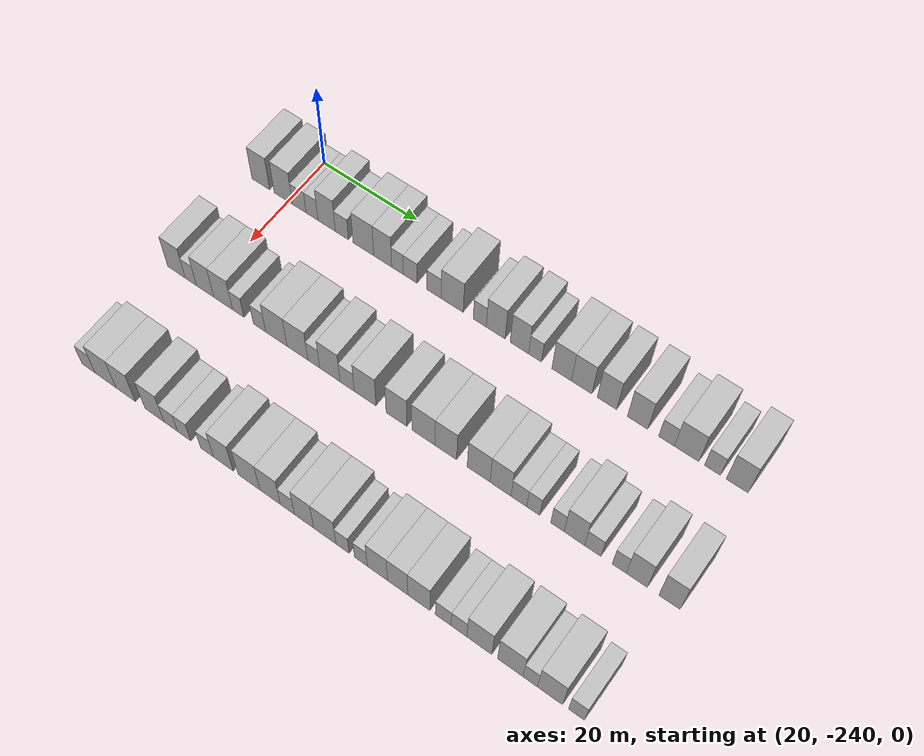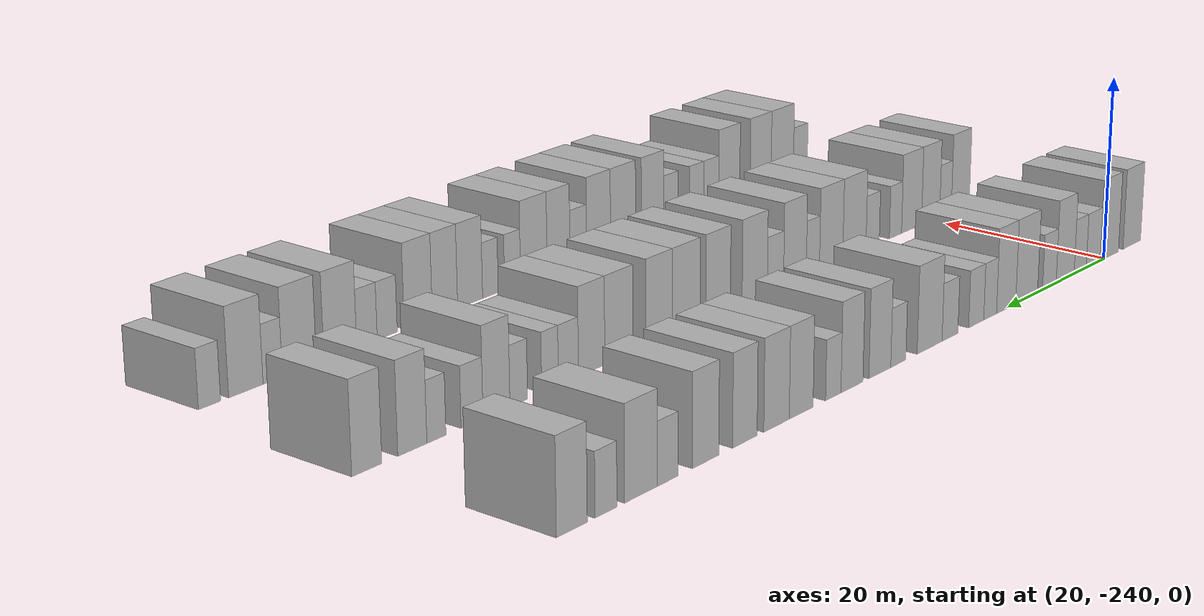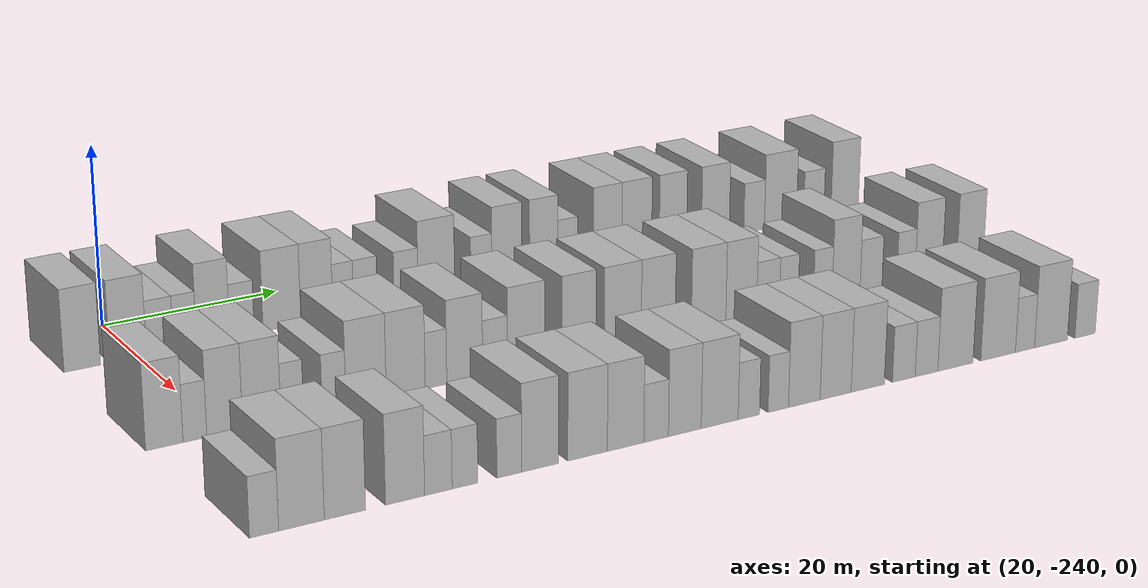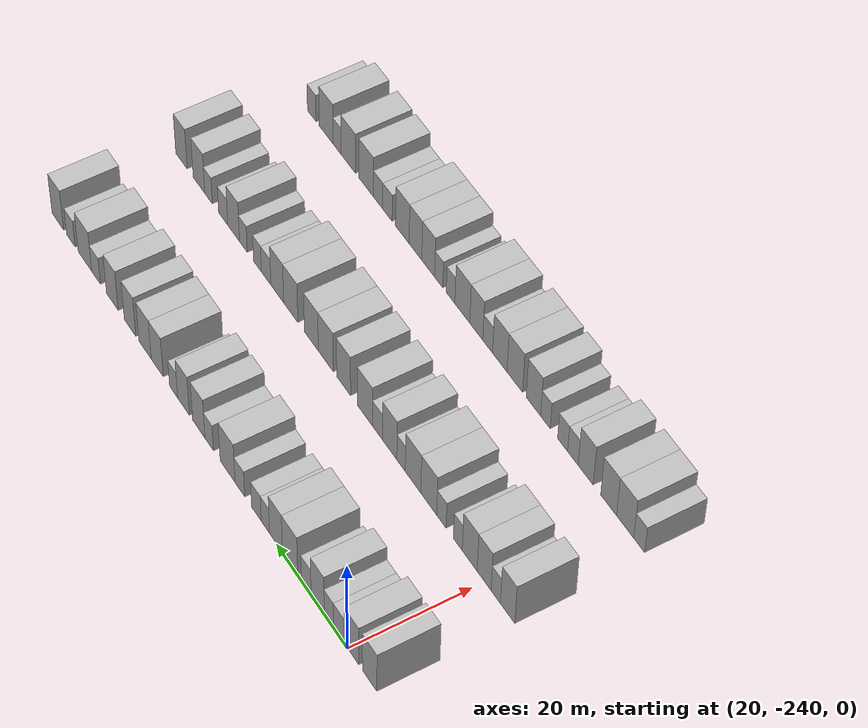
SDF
<sdf version="1.6">
 <world name="default">
  <model name="building_1">
   <static>1</static>
   <pose>25.0000 -246.0321 0 0.000000 0.000000 0.000000</pose>
   <link name="link">
    <pose>0 0 4.50 0 0 0</pose>
    <collision name="collision"><geometry><box><size>10.0000 3.9358 9.0000</size></box></geometry></collision>
    <visual name="visual">
     <cast_shadows>0</cast_shadows>
     <geometry><box><size>10.0000 3.9358 9.0000</size></box></geometry>
     <material>
      <script>
       <uri>model://HANNAS_wall/materials/scripts</uri>
       <uri>model://HANNAS_wall/materials/textures</uri>
       <name>vrc/HANNAS_wall</name>
      </script>
     </material>
    </visual>
   </link>
  </model>
  <model name="building_2">
   <static>1</static>
   <pose>25.0000 -241.0633 0 0.000000 0.000000 0.000000</pose>
   <link name="link">
    <pose>0 0 4.50 0 0 0</pose>
    <collision name="collision"><geometry><box><size>10.0000 4.0018 9.0000</size></box></geometry></collision>
    <visual name="visual">
     <cast_shadows>0</cast_shadows>
     <geometry><box><size>10.0000 4.0018 9.0000</size></box></geometry>
     <material>
      <script>
       <uri>model://HANNAS_wall/materials/scripts</uri>
       <uri>model://HANNAS_wall/materials/textures</uri>
       <name>vrc/HANNAS_wall</name>
      </script>
     </material>
    </visual>
   </link>
  </model>
  <model name="building_3">
   <static>1</static>
   <pose>25.0000 -237.5678 0 0.000000 0.000000 0.000000</pose>
   <link name="link">
    <pose>0 0 3.00 0 0 0</pose>
    <collision name="collision"><geometry><box><size>10.0000 2.9891 6.0000</size></box></geometry></collision>
    <visual name="visual">
     <cast_shadows>0</cast_shadows>
     <geometry><box><size>10.0000 2.9891 6.0000</size></box></geometry>
     <material>
      <script>
       <uri>model://HANNAS_wall/materials/scripts</uri>
       <uri>model://HANNAS_wall/materials/textures</uri>
       <name>vrc/HANNAS_wall</name>
      </script>
     </material>
    </visual>
   </link>
  </model>
  <model name="building_4">
   <static>1</static>
   <pose>25.0000 -234.7901 0 0.000000 0.000000 0.000000</pose>
   <link name="link">
    <pose>0 0 3.00 0 0 0</pose>
    <collision name="collision"><geometry><box><size>10.0000 2.5665 6.0000</size></box></geometry></collision>
    <visual name="visual">
     <cast_shadows>0</cast_shadows>
     <geometry><box><size>10.0000 2.5665 6.0000</size></box></geometry>
     <material>
      <script>
       <uri>model://HANNAS_wall/materials/scripts</uri>
       <uri>model://HANNAS_wall/materials/textures</uri>
       <name>vrc/HANNAS_wall</name>
      </script>
     </material>
    </visual>
   </link>
  </model>
  <model name="building_5">
   <static>1</static>
   <pose>25.0000 -231.6362 0 0.000000 0.000000 0.000000</pose>
   <link name="link">
    <pose>0 0 4.50 0 0 0</pose>
    <collision name="collision"><geometry><box><size>10.0000 3.7411 9.0000</size></box></geometry></collision>
    <visual name="visual">
     <cast_shadows>0</cast_shadows>
     <geometry><box><size>10.0000 3.7411 9.0000</size></box></geometry>
     <material>
      <script>
       <uri>model://HANNAS_wall/materials/scripts</uri>
       <uri>model://HANNAS_wall/materials/textures</uri>
       <name>vrc/HANNAS_wall</name>
      </script>
     </material>
    </visual>
   </link>
  </model>
  <model name="building_6">
   <static>1</static>
   <pose>25.0000 -228.3736 0 0.000000 0.000000 0.000000</pose>
   <link name="link">
    <pose>0 0 3.00 0 0 0</pose>
    <collision name="collision"><geometry><box><size>10.0000 2.7841 6.0000</size></box></geometry></collision>
    <visual name="visual">
     <cast_shadows>0</cast_shadows>
     <geometry><box><size>10.0000 2.7841 6.0000</size></box></geometry>
     <material>
      <script>
       <uri>model://HANNAS_wall/materials/scripts</uri>
       <uri>model://HANNAS_wall/materials/textures</uri>
       <name>vrc/HANNAS_wall</name>
      </script>
     </material>
    </visual>
   </link>
  </model>
  <model name="building_7">
   <static>1</static>
   <pose>25.0000 -223.8001 0 0.000000 0.000000 0.000000</pose>
   <link name="link">
    <pose>0 0 4.50 0 0 0</pose>
    <collision name="collision"><geometry><box><size>10.0000 4.3630 9.0000</size></box></geometry></collision>
    <visual name="visual">
     <cast_shadows>0</cast_shadows>
     <geometry><box><size>10.0000 4.3630 9.0000</size></box></geometry>
     <material>
      <script>
       <uri>model://HANNAS_wall/materials/scripts</uri>
       <uri>model://HANNAS_wall/materials/textures</uri>
       <name>vrc/HANNAS_wall</name>
      </script>
     </material>
    </visual>
   </link>
  </model>
  <model name="building_8">
   <static>1</static>
   <pose>25.0000 -219.7464 0 0.000000 0.000000 0.000000</pose>
   <link name="link">
    <pose>0 0 4.50 0 0 0</pose>
    <collision name="collision"><geometry><box><size>10.0000 3.7443 9.0000</size></box></geometry></collision>
    <visual name="visual">
     <cast_shadows>0</cast_shadows>
     <geometry><box><size>10.0000 3.7443 9.0000</size></box></geometry>
     <material>
      <script>
       <uri>model://HANNAS_wall/materials/scripts</uri>
       <uri>model://HANNAS_wall/materials/textures</uri>
       <name>vrc/HANNAS_wall</name>
      </script>
     </material>
    </visual>
   </link>
  </model>
  <model name="building_9">
   <static>1</static>
   <pose>25.0000 -216.6499 0 0.000000 0.000000 0.000000</pose>
   <link name="link">
    <pose>0 0 3.00 0 0 0</pose>
    <collision name="collision"><geometry><box><size>10.0000 2.4486 6.0000</size></box></geometry></collision>
    <visual name="visual">
     <cast_shadows>0</cast_shadows>
     <geometry><box><size>10.0000 2.4486 6.0000</size></box></geometry>
     <material>
      <script>
       <uri>model://HANNAS_wall/materials/scripts</uri>
       <uri>model://HANNAS_wall/materials/textures</uri>
       <name>vrc/HANNAS_wall</name>
      </script>
     </material>
    </visual>
   </link>
  </model>
  <model name="building_10">
   <static>1</static>
   <pose>25.0000 -214.0014 0 0.000000 0.000000 0.000000</pose>
   <link name="link">
    <pose>0 0 3.00 0 0 0</pose>
    <collision name="collision"><geometry><box><size>10.0000 2.8485 6.0000</size></box></geometry></collision>
    <visual name="visual">
     <cast_shadows>0</cast_shadows>
     <geometry><box><size>10.0000 2.8485 6.0000</size></box></geometry>
     <material>
      <script>
       <uri>model://HANNAS_wall/materials/scripts</uri>
       <uri>model://HANNAS_wall/materials/textures</uri>
       <name>vrc/HANNAS_wall</name>
      </script>
     </material>
    </visual>
   </link>
  </model>
  <model name="building_11">
   <static>1</static>
   <pose>25.0000 -209.1269 0 0.000000 0.000000 0.000000</pose>
   <link name="link">
    <pose>0 0 3.00 0 0 0</pose>
    <collision name="collision"><geometry><box><size>10.0000 2.9004 6.0000</size></box></geometry></collision>
    <visual name="visual">
     <cast_shadows>0</cast_shadows>
     <geometry><box><size>10.0000 2.9004 6.0000</size></box></geometry>
     <material>
      <script>
       <uri>model://HANNAS_wall/materials/scripts</uri>
       <uri>model://HANNAS_wall/materials/textures</uri>
       <name>vrc/HANNAS_wall</name>
      </script>
     </material>
    </visual>
   </link>
  </model>
  <model name="building_12">
   <static>1</static>
   <pose>25.0000 -205.4417 0 0.000000 0.000000 0.000000</pose>
   <link name="link">
    <pose>0 0 4.50 0 0 0</pose>
    <collision name="collision"><geometry><box><size>10.0000 4.4702 9.0000</size></box></geometry></collision>
    <visual name="visual">
     <cast_shadows>0</cast_shadows>
     <geometry><box><size>10.0000 4.4702 9.0000</size></box></geometry>
     <material>
      <script>
       <uri>model://HANNAS_wall/materials/scripts</uri>
       <uri>model://HANNAS_wall/materials/textures</uri>
       <name>vrc/HANNAS_wall</name>
      </script>
     </material>
    </visual>
   </link>
  </model>
  <model name="building_13">
   <static>1</static>
   <pose>25.0000 -199.8999 0 0.000000 0.000000 0.000000</pose>
   <link name="link">
    <pose>0 0 3.00 0 0 0</pose>
    <collision name="collision"><geometry><box><size>10.0000 2.6133 6.0000</size></box></geometry></collision>
    <visual name="visual">
     <cast_shadows>0</cast_shadows>
     <geometry><box><size>10.0000 2.6133 6.0000</size></box></geometry>
     <material>
      <script>
       <uri>model://HANNAS_wall/materials/scripts</uri>
       <uri>model://HANNAS_wall/materials/textures</uri>
       <name>vrc/HANNAS_wall</name>
      </script>
     </material>
    </visual>
   </link>
  </model>
  <model name="building_14">
   <static>1</static>
   <pose>25.0000 -196.7262 0 0.000000 0.000000 0.000000</pose>
   <link name="link">
    <pose>0 0 4.50 0 0 0</pose>
    <collision name="collision"><geometry><box><size>10.0000 3.7342 9.0000</size></box></geometry></collision>
    <visual name="visual">
     <cast_shadows>0</cast_shadows>
     <geometry><box><size>10.0000 3.7342 9.0000</size></box></geometry>
     <material>
      <script>
       <uri>model://HANNAS_wall/materials/scripts</uri>
       <uri>model://HANNAS_wall/materials/textures</uri>
       <name>vrc/HANNAS_wall</name>
      </script>
     </material>
    </visual>
   </link>
  </model>
  <model name="building_15">
   <static>1</static>
   <pose>25.0000 -192.0377 0 0.000000 0.000000 0.000000</pose>
   <link name="link">
    <pose>0 0 4.50 0 0 0</pose>
    <collision name="collision"><geometry><box><size>10.0000 3.6429 9.0000</size></box></geometry></collision>
    <visual name="visual">
     <cast_shadows>0</cast_shadows>
     <geometry><box><size>10.0000 3.6429 9.0000</size></box></geometry>
     <material>
      <script>
       <uri>model://HANNAS_wall/materials/scripts</uri>
       <uri>model://HANNAS_wall/materials/textures</uri>
       <name>vrc/HANNAS_wall</name>
      </script>
     </material>
    </visual>
   </link>
  </model>
  <model name="building_16">
   <static>1</static>
   <pose>25.0000 -188.9643 0 0.000000 0.000000 0.000000</pose>
   <link name="link">
    <pose>0 0 3.00 0 0 0</pose>
    <collision name="collision"><geometry><box><size>10.0000 2.5039 6.0000</size></box></geometry></collision>
    <visual name="visual">
     <cast_shadows>0</cast_shadows>
     <geometry><box><size>10.0000 2.5039 6.0000</size></box></geometry>
     <material>
      <script>
       <uri>model://HANNAS_wall/materials/scripts</uri>
       <uri>model://HANNAS_wall/materials/textures</uri>
       <name>vrc/HANNAS_wall</name>
      </script>
     </material>
    </visual>
   </link>
  </model>
  <model name="building_17">
   <static>1</static>
   <pose>25.0000 -183.8332 0 0.000000 0.000000 0.000000</pose>
   <link name="link">
    <pose>0 0 4.50 0 0 0</pose>
    <collision name="collision"><geometry><box><size>10.0000 3.7584 9.0000</size></box></geometry></collision>
    <visual name="visual">
     <cast_shadows>0</cast_shadows>
     <geometry><box><size>10.0000 3.7584 9.0000</size></box></geometry>
     <material>
      <script>
       <uri>model://HANNAS_wall/materials/scripts</uri>
       <uri>model://HANNAS_wall/materials/textures</uri>
       <name>vrc/HANNAS_wall</name>
      </script>
     </material>
    </visual>
   </link>
  </model>
  <model name="building_18">
   <static>1</static>
   <pose>25.0000 -179.9946 0 0.000000 0.000000 0.000000</pose>
   <link name="link">
    <pose>0 0 4.50 0 0 0</pose>
    <collision name="collision"><geometry><box><size>10.0000 3.9188 9.0000</size></box></geometry></collision>
    <visual name="visual">
     <cast_shadows>0</cast_shadows>
     <geometry><box><size>10.0000 3.9188 9.0000</size></box></geometry>
     <material>
      <script>
       <uri>model://HANNAS_wall/materials/scripts</uri>
       <uri>model://HANNAS_wall/materials/textures</uri>
       <name>vrc/HANNAS_wall</name>
      </script>
     </material>
    </visual>
   </link>
  </model>
  <model name="building_19">
   <static>1</static>
   <pose>25.0000 -175.1993 0 0.000000 0.000000 0.000000</pose>
   <link name="link">
    <pose>0 0 4.50 0 0 0</pose>
    <collision name="collision"><geometry><box><size>10.0000 3.6717 9.0000</size></box></geometry></collision>
    <visual name="visual">
     <cast_shadows>0</cast_shadows>
     <geometry><box><size>10.0000 3.6717 9.0000</size></box></geometry>
     <material>
      <script>
       <uri>model://HANNAS_wall/materials/scripts</uri>
       <uri>model://HANNAS_wall/materials/textures</uri>
       <name>vrc/HANNAS_wall</name>
      </script>
     </material>
    </visual>
   </link>
  </model>
  <model name="building_20">
   <static>1</static>
   <pose>25.0000 -169.4626 0 0.000000 0.000000 0.000000</pose>
   <link name="link">
    <pose>0 0 4.50 0 0 0</pose>
    <collision name="collision"><geometry><box><size>10.0000 3.8018 9.0000</size></box></geometry></collision>
    <visual name="visual">
     <cast_shadows>0</cast_shadows>
     <geometry><box><size>10.0000 3.8018 9.0000</size></box></geometry>
     <material>
      <script>
       <uri>model://HANNAS_wall/materials/scripts</uri>
       <uri>model://HANNAS_wall/materials/textures</uri>
       <name>vrc/HANNAS_wall</name>
      </script>
     </material>
    </visual>
   </link>
  </model>
  <model name="building_21">
   <static>1</static>
   <pose>25.0000 -164.1286 0 0.000000 0.000000 0.000000</pose>
   <link name="link">
    <pose>0 0 3.00 0 0 0</pose>
    <collision name="collision"><geometry><box><size>10.0000 2.8662 6.0000</size></box></geometry></collision>
    <visual name="visual">
     <cast_shadows>0</cast_shadows>
     <geometry><box><size>10.0000 2.8662 6.0000</size></box></geometry>
     <material>
      <script>
       <uri>model://HANNAS_wall/materials/scripts</uri>
       <uri>model://HANNAS_wall/materials/textures</uri>
       <name>vrc/HANNAS_wall</name>
      </script>
     </material>
    </visual>
   </link>
  </model>
  <model name="building_22">
   <static>1</static>
   <pose>25.0000 -160.4556 0 0.000000 0.000000 0.000000</pose>
   <link name="link">
    <pose>0 0 4.50 0 0 0</pose>
    <collision name="collision"><geometry><box><size>10.0000 4.4797 9.0000</size></box></geometry></collision>
    <visual name="visual">
     <cast_shadows>0</cast_shadows>
     <geometry><box><size>10.0000 4.4797 9.0000</size></box></geometry>
     <material>
      <script>
       <uri>model://HANNAS_wall/materials/scripts</uri>
       <uri>model://HANNAS_wall/materials/textures</uri>
       <name>vrc/HANNAS_wall</name>
      </script>
     </material>
    </visual>
   </link>
  </model>
  <model name="building_23">
   <static>1</static>
   <pose>25.0000 -155.7748 0 0.000000 0.000000 0.000000</pose>
   <link name="link">
    <pose>0 0 3.00 0 0 0</pose>
    <collision name="collision"><geometry><box><size>10.0000 2.8818 6.0000</size></box></geometry></collision>
    <visual name="visual">
     <cast_shadows>0</cast_shadows>
     <geometry><box><size>10.0000 2.8818 6.0000</size></box></geometry>
     <material>
      <script>
       <uri>model://HANNAS_wall/materials/scripts</uri>
       <uri>model://HANNAS_wall/materials/textures</uri>
       <name>vrc/HANNAS_wall</name>
      </script>
     </material>
    </visual>
   </link>
  </model>
  <model name="building_24">
   <static>1</static>
   <pose>25.0000 -151.3680 0 0.000000 0.000000 0.000000</pose>
   <link name="link">
    <pose>0 0 4.50 0 0 0</pose>
    <collision name="collision"><geometry><box><size>10.0000 3.9319 9.0000</size></box></geometry></collision>
    <visual name="visual">
     <cast_shadows>0</cast_shadows>
     <geometry><box><size>10.0000 3.9319 9.0000</size></box></geometry>
     <material>
      <script>
       <uri>model://HANNAS_wall/materials/scripts</uri>
       <uri>model://HANNAS_wall/materials/textures</uri>
       <name>vrc/HANNAS_wall</name>
      </script>
     </material>
    </visual>
   </link>
  </model>
  <model name="building_125">
   <static>1</static>
   <pose>47.0000 -246.0832 0 0.000000 0.000000 0.000000</pose>
   <link name="link">
    <pose>0 0 4.50 0 0 0</pose>
    <collision name="collision"><geometry><box><size>10.0000 3.8337 9.0000</size></box></geometry></collision>
    <visual name="visual">
     <cast_shadows>0</cast_shadows>
     <geometry><box><size>10.0000 3.8337 9.0000</size></box></geometry>
     <material>
      <script>
       <uri>model://HANNAS_wall/materials/scripts</uri>
       <uri>model://HANNAS_wall/materials/textures</uri>
       <name>vrc/HANNAS_wall</name>
      </script>
     </material>
    </visual>
   </link>
  </model>
  <model name="building_126">
   <static>1</static>
   <pose>47.0000 -242.9402 0 0.000000 0.000000 0.000000</pose>
   <link name="link">
    <pose>0 0 3.00 0 0 0</pose>
    <collision name="collision"><geometry><box><size>10.0000 2.4523 6.0000</size></box></geometry></collision>
    <visual name="visual">
     <cast_shadows>0</cast_shadows>
     <geometry><box><size>10.0000 2.4523 6.0000</size></box></geometry>
     <material>
      <script>
       <uri>model://HANNAS_wall/materials/scripts</uri>
       <uri>model://HANNAS_wall/materials/textures</uri>
       <name>vrc/HANNAS_wall</name>
      </script>
     </material>
    </visual>
   </link>
  </model>
  <model name="building_127">
   <static>1</static>
   <pose>47.0000 -239.8428 0 0.000000 0.000000 0.000000</pose>
   <link name="link">
    <pose>0 0 4.50 0 0 0</pose>
    <collision name="collision"><geometry><box><size>10.0000 3.7426 9.0000</size></box></geometry></collision>
    <visual name="visual">
     <cast_shadows>0</cast_shadows>
     <geometry><box><size>10.0000 3.7426 9.0000</size></box></geometry>
     <material>
      <script>
       <uri>model://HANNAS_wall/materials/scripts</uri>
       <uri>model://HANNAS_wall/materials/textures</uri>
       <name>vrc/HANNAS_wall</name>
      </script>
     </material>
    </visual>
   </link>
  </model>
  <model name="building_128">
   <static>1</static>
   <pose>47.0000 -235.9522 0 0.000000 0.000000 0.000000</pose>
   <link name="link">
    <pose>0 0 4.50 0 0 0</pose>
    <collision name="collision"><geometry><box><size>10.0000 4.0385 9.0000</size></box></geometry></collision>
    <visual name="visual">
     <cast_shadows>0</cast_shadows>
     <geometry><box><size>10.0000 4.0385 9.0000</size></box></geometry>
     <material>
      <script>
       <uri>model://HANNAS_wall/materials/scripts</uri>
       <uri>model://HANNAS_wall/materials/textures</uri>
       <name>vrc/HANNAS_wall</name>
      </script>
     </material>
    </visual>
   </link>
  </model>
  <model name="building_129">
   <static>1</static>
   <pose>47.0000 -232.7206 0 0.000000 0.000000 0.000000</pose>
   <link name="link">
    <pose>0 0 3.00 0 0 0</pose>
    <collision name="collision"><geometry><box><size>10.0000 2.4247 6.0000</size></box></geometry></collision>
    <visual name="visual">
     <cast_shadows>0</cast_shadows>
     <geometry><box><size>10.0000 2.4247 6.0000</size></box></geometry>
     <material>
      <script>
       <uri>model://HANNAS_wall/materials/scripts</uri>
       <uri>model://HANNAS_wall/materials/textures</uri>
       <name>vrc/HANNAS_wall</name>
      </script>
     </material>
    </visual>
   </link>
  </model>
  <model name="building_130">
   <static>1</static>
   <pose>47.0000 -228.2171 0 0.000000 0.000000 0.000000</pose>
   <link name="link">
    <pose>0 0 3.00 0 0 0</pose>
    <collision name="collision"><geometry><box><size>10.0000 2.5824 6.0000</size></box></geometry></collision>
    <visual name="visual">
     <cast_shadows>0</cast_shadows>
     <geometry><box><size>10.0000 2.5824 6.0000</size></box></geometry>
     <material>
      <script>
       <uri>model://HANNAS_wall/materials/scripts</uri>
       <uri>model://HANNAS_wall/materials/textures</uri>
       <name>vrc/HANNAS_wall</name>
      </script>
     </material>
    </visual>
   </link>
  </model>
  <model name="building_131">
   <static>1</static>
   <pose>47.0000 -224.7094 0 0.000000 0.000000 0.000000</pose>
   <link name="link">
    <pose>0 0 4.50 0 0 0</pose>
    <collision name="collision"><geometry><box><size>10.0000 4.4328 9.0000</size></box></geometry></collision>
    <visual name="visual">
     <cast_shadows>0</cast_shadows>
     <geometry><box><size>10.0000 4.4328 9.0000</size></box></geometry>
     <material>
      <script>
       <uri>model://HANNAS_wall/materials/scripts</uri>
       <uri>model://HANNAS_wall/materials/textures</uri>
       <name>vrc/HANNAS_wall</name>
      </script>
     </material>
    </visual>
   </link>
  </model>
  <model name="building_132">
   <static>1</static>
   <pose>47.0000 -220.3193 0 0.000000 0.000000 0.000000</pose>
   <link name="link">
    <pose>0 0 4.50 0 0 0</pose>
    <collision name="collision"><geometry><box><size>10.0000 4.3474 9.0000</size></box></geometry></collision>
    <visual name="visual">
     <cast_shadows>0</cast_shadows>
     <geometry><box><size>10.0000 4.3474 9.0000</size></box></geometry>
     <material>
      <script>
       <uri>model://HANNAS_wall/materials/scripts</uri>
       <uri>model://HANNAS_wall/materials/textures</uri>
       <name>vrc/HANNAS_wall</name>
      </script>
     </material>
    </visual>
   </link>
  </model>
  <model name="building_133">
   <static>1</static>
   <pose>47.0000 -216.9324 0 0.000000 0.000000 0.000000</pose>
   <link name="link">
    <pose>0 0 3.00 0 0 0</pose>
    <collision name="collision"><geometry><box><size>10.0000 2.4265 6.0000</size></box></geometry></collision>
    <visual name="visual">
     <cast_shadows>0</cast_shadows>
     <geometry><box><size>10.0000 2.4265 6.0000</size></box></geometry>
     <material>
      <script>
       <uri>model://HANNAS_wall/materials/scripts</uri>
       <uri>model://HANNAS_wall/materials/textures</uri>
       <name>vrc/HANNAS_wall</name>
      </script>
     </material>
    </visual>
   </link>
  </model>
  <model name="building_134">
   <static>1</static>
   <pose>47.0000 -213.6719 0 0.000000 0.000000 0.000000</pose>
   <link name="link">
    <pose>0 0 4.50 0 0 0</pose>
    <collision name="collision"><geometry><box><size>10.0000 4.0945 9.0000</size></box></geometry></collision>
    <visual name="visual">
     <cast_shadows>0</cast_shadows>
     <geometry><box><size>10.0000 4.0945 9.0000</size></box></geometry>
     <material>
      <script>
       <uri>model://HANNAS_wall/materials/scripts</uri>
       <uri>model://HANNAS_wall/materials/textures</uri>
       <name>vrc/HANNAS_wall</name>
      </script>
     </material>
    </visual>
   </link>
  </model>
  <model name="building_135">
   <static>1</static>
   <pose>47.0000 -210.1848 0 0.000000 0.000000 0.000000</pose>
   <link name="link">
    <pose>0 0 3.00 0 0 0</pose>
    <collision name="collision"><geometry><box><size>10.0000 2.8796 6.0000</size></box></geometry></collision>
    <visual name="visual">
     <cast_shadows>0</cast_shadows>
     <geometry><box><size>10.0000 2.8796 6.0000</size></box></geometry>
     <material>
      <script>
       <uri>model://HANNAS_wall/materials/scripts</uri>
       <uri>model://HANNAS_wall/materials/textures</uri>
       <name>vrc/HANNAS_wall</name>
      </script>
     </material>
    </visual>
   </link>
  </model>
  <model name="building_136">
   <static>1</static>
   <pose>47.0000 -206.5681 0 0.000000 0.000000 0.000000</pose>
   <link name="link">
    <pose>0 0 4.50 0 0 0</pose>
    <collision name="collision"><geometry><box><size>10.0000 4.3539 9.0000</size></box></geometry></collision>
    <visual name="visual">
     <cast_shadows>0</cast_shadows>
     <geometry><box><size>10.0000 4.3539 9.0000</size></box></geometry>
     <material>
      <script>
       <uri>model://HANNAS_wall/materials/scripts</uri>
       <uri>model://HANNAS_wall/materials/textures</uri>
       <name>vrc/HANNAS_wall</name>
      </script>
     </material>
    </visual>
   </link>
  </model>
  <model name="building_137">
   <static>1</static>
   <pose>47.0000 -200.3552 0 0.000000 0.000000 0.000000</pose>
   <link name="link">
    <pose>0 0 4.50 0 0 0</pose>
    <collision name="collision"><geometry><box><size>10.0000 4.0718 9.0000</size></box></geometry></collision>
    <visual name="visual">
     <cast_shadows>0</cast_shadows>
     <geometry><box><size>10.0000 4.0718 9.0000</size></box></geometry>
     <material>
      <script>
       <uri>model://HANNAS_wall/materials/scripts</uri>
       <uri>model://HANNAS_wall/materials/textures</uri>
       <name>vrc/HANNAS_wall</name>
      </script>
     </material>
    </visual>
   </link>
  </model>
  <model name="building_138">
   <static>1</static>
   <pose>47.0000 -195.0849 0 0.000000 0.000000 0.000000</pose>
   <link name="link">
    <pose>0 0 4.50 0 0 0</pose>
    <collision name="collision"><geometry><box><size>10.0000 4.4689 9.0000</size></box></geometry></collision>
    <visual name="visual">
     <cast_shadows>0</cast_shadows>
     <geometry><box><size>10.0000 4.4689 9.0000</size></box></geometry>
     <material>
      <script>
       <uri>model://HANNAS_wall/materials/scripts</uri>
       <uri>model://HANNAS_wall/materials/textures</uri>
       <name>vrc/HANNAS_wall</name>
      </script>
     </material>
    </visual>
   </link>
  </model>
  <model name="building_139">
   <static>1</static>
   <pose>47.0000 -190.7635 0 0.000000 0.000000 0.000000</pose>
   <link name="link">
    <pose>0 0 4.50 0 0 0</pose>
    <collision name="collision"><geometry><box><size>10.0000 4.1739 9.0000</size></box></geometry></collision>
    <visual name="visual">
     <cast_shadows>0</cast_shadows>
     <geometry><box><size>10.0000 4.1739 9.0000</size></box></geometry>
     <material>
      <script>
       <uri>model://HANNAS_wall/materials/scripts</uri>
       <uri>model://HANNAS_wall/materials/textures</uri>
       <name>vrc/HANNAS_wall</name>
      </script>
     </material>
    </visual>
   </link>
  </model>
  <model name="building_140">
   <static>1</static>
   <pose>47.0000 -184.5082 0 0.000000 0.000000 0.000000</pose>
   <link name="link">
    <pose>0 0 4.50 0 0 0</pose>
    <collision name="collision"><geometry><box><size>10.0000 4.3366 9.0000</size></box></geometry></collision>
    <visual name="visual">
     <cast_shadows>0</cast_shadows>
     <geometry><box><size>10.0000 4.3366 9.0000</size></box></geometry>
     <material>
      <script>
       <uri>model://HANNAS_wall/materials/scripts</uri>
       <uri>model://HANNAS_wall/materials/textures</uri>
       <name>vrc/HANNAS_wall</name>
      </script>
     </material>
    </visual>
   </link>
  </model>
  <model name="building_141">
   <static>1</static>
   <pose>47.0000 -180.3769 0 0.000000 0.000000 0.000000</pose>
   <link name="link">
    <pose>0 0 4.50 0 0 0</pose>
    <collision name="collision"><geometry><box><size>10.0000 3.9260 9.0000</size></box></geometry></collision>
    <visual name="visual">
     <cast_shadows>0</cast_shadows>
     <geometry><box><size>10.0000 3.9260 9.0000</size></box></geometry>
     <material>
      <script>
       <uri>model://HANNAS_wall/materials/scripts</uri>
       <uri>model://HANNAS_wall/materials/textures</uri>
       <name>vrc/HANNAS_wall</name>
      </script>
     </material>
    </visual>
   </link>
  </model>
  <model name="building_142">
   <static>1</static>
   <pose>47.0000 -176.9503 0 0.000000 0.000000 0.000000</pose>
   <link name="link">
    <pose>0 0 3.00 0 0 0</pose>
    <collision name="collision"><geometry><box><size>10.0000 2.9273 6.0000</size></box></geometry></collision>
    <visual name="visual">
     <cast_shadows>0</cast_shadows>
     <geometry><box><size>10.0000 2.9273 6.0000</size></box></geometry>
     <material>
      <script>
       <uri>model://HANNAS_wall/materials/scripts</uri>
       <uri>model://HANNAS_wall/materials/textures</uri>
       <name>vrc/HANNAS_wall</name>
      </script>
     </material>
    </visual>
   </link>
  </model>
  <model name="building_143">
   <static>1</static>
   <pose>47.0000 -174.2851 0 0.000000 0.000000 0.000000</pose>
   <link name="link">
    <pose>0 0 3.00 0 0 0</pose>
    <collision name="collision"><geometry><box><size>10.0000 2.4031 6.0000</size></box></geometry></collision>
    <visual name="visual">
     <cast_shadows>0</cast_shadows>
     <geometry><box><size>10.0000 2.4031 6.0000</size></box></geometry>
     <material>
      <script>
       <uri>model://HANNAS_wall/materials/scripts</uri>
       <uri>model://HANNAS_wall/materials/textures</uri>
       <name>vrc/HANNAS_wall</name>
      </script>
     </material>
    </visual>
   </link>
  </model>
  <model name="building_144">
   <static>1</static>
   <pose>47.0000 -169.8526 0 0.000000 0.000000 0.000000</pose>
   <link name="link">
    <pose>0 0 3.00 0 0 0</pose>
    <collision name="collision"><geometry><box><size>10.0000 2.4620 6.0000</size></box></geometry></collision>
    <visual name="visual">
     <cast_shadows>0</cast_shadows>
     <geometry><box><size>10.0000 2.4620 6.0000</size></box></geometry>
     <material>
      <script>
       <uri>model://HANNAS_wall/materials/scripts</uri>
       <uri>model://HANNAS_wall/materials/textures</uri>
       <name>vrc/HANNAS_wall</name>
      </script>
     </material>
    </visual>
   </link>
  </model>
  <model name="building_145">
   <static>1</static>
   <pose>47.0000 -166.7726 0 0.000000 0.000000 0.000000</pose>
   <link name="link">
    <pose>0 0 4.50 0 0 0</pose>
    <collision name="collision"><geometry><box><size>10.0000 3.6981 9.0000</size></box></geometry></collision>
    <visual name="visual">
     <cast_shadows>0</cast_shadows>
     <geometry><box><size>10.0000 3.6981 9.0000</size></box></geometry>
     <material>
      <script>
       <uri>model://HANNAS_wall/materials/scripts</uri>
       <uri>model://HANNAS_wall/materials/textures</uri>
       <name>vrc/HANNAS_wall</name>
      </script>
     </material>
    </visual>
   </link>
  </model>
  <model name="building_146">
   <static>1</static>
   <pose>47.0000 -163.4524 0 0.000000 0.000000 0.000000</pose>
   <link name="link">
    <pose>0 0 3.00 0 0 0</pose>
    <collision name="collision"><geometry><box><size>10.0000 2.9423 6.0000</size></box></geometry></collision>
    <visual name="visual">
     <cast_shadows>0</cast_shadows>
     <geometry><box><size>10.0000 2.9423 6.0000</size></box></geometry>
     <material>
      <script>
       <uri>model://HANNAS_wall/materials/scripts</uri>
       <uri>model://HANNAS_wall/materials/textures</uri>
       <name>vrc/HANNAS_wall</name>
      </script>
     </material>
    </visual>
   </link>
  </model>
  <model name="building_147">
   <static>1</static>
   <pose>47.0000 -158.7390 0 0.000000 0.000000 0.000000</pose>
   <link name="link">
    <pose>0 0 3.00 0 0 0</pose>
    <collision name="collision"><geometry><box><size>10.0000 2.4845 6.0000</size></box></geometry></collision>
    <visual name="visual">
     <cast_shadows>0</cast_shadows>
     <geometry><box><size>10.0000 2.4845 6.0000</size></box></geometry>
     <material>
      <script>
       <uri>model://HANNAS_wall/materials/scripts</uri>
       <uri>model://HANNAS_wall/materials/textures</uri>
       <name>vrc/HANNAS_wall</name>
      </script>
     </material>
    </visual>
   </link>
  </model>
  <model name="building_148">
   <static>1</static>
   <pose>47.0000 -155.6385 0 0.000000 0.000000 0.000000</pose>
   <link name="link">
    <pose>0 0 4.50 0 0 0</pose>
    <collision name="collision"><geometry><box><size>10.0000 3.7164 9.0000</size></box></geometry></collision>
    <visual name="visual">
     <cast_shadows>0</cast_shadows>
     <geometry><box><size>10.0000 3.7164 9.0000</size></box></geometry>
     <material>
      <script>
       <uri>model://HANNAS_wall/materials/scripts</uri>
       <uri>model://HANNAS_wall/materials/textures</uri>
       <name>vrc/HANNAS_wall</name>
      </script>
     </material>
    </visual>
   </link>
  </model>
  <model name="building_149">
   <static>1</static>
   <pose>47.0000 -149.9242 0 0.000000 0.000000 0.000000</pose>
   <link name="link">
    <pose>0 0 4.50 0 0 0</pose>
    <collision name="collision"><geometry><box><size>10.0000 3.7121 9.0000</size></box></geometry></collision>
    <visual name="visual">
     <cast_shadows>0</cast_shadows>
     <geometry><box><size>10.0000 3.7121 9.0000</size></box></geometry>
     <material>
      <script>
       <uri>model://HANNAS_wall/materials/scripts</uri>
       <uri>model://HANNAS_wall/materials/textures</uri>
       <name>vrc/HANNAS_wall</name>
      </script>
     </material>
    </visual>
   </link>
  </model>
  <model name="building_255">
   <static>1</static>
   <pose>69.0000 -245.5816 0 0.000000 0.000000 0.000000</pose>
   <link name="link">
    <pose>0 0 3.00 0 0 0</pose>
    <collision name="collision"><geometry><box><size>10.0000 2.8367 6.0000</size></box></geometry></collision>
    <visual name="visual">
     <cast_shadows>0</cast_shadows>
     <geometry><box><size>10.0000 2.8367 6.0000</size></box></geometry>
     <material>
      <script>
       <uri>model://HANNAS_wall/materials/scripts</uri>
       <uri>model://HANNAS_wall/materials/textures</uri>
       <name>vrc/HANNAS_wall</name>
      </script>
     </material>
    </visual>
   </link>
  </model>
  <model name="building_256">
   <static>1</static>
   <pose>69.0000 -241.9180 0 0.000000 0.000000 0.000000</pose>
   <link name="link">
    <pose>0 0 4.50 0 0 0</pose>
    <collision name="collision"><geometry><box><size>10.0000 4.4906 9.0000</size></box></geometry></collision>
    <visual name="visual">
     <cast_shadows>0</cast_shadows>
     <geometry><box><size>10.0000 4.4906 9.0000</size></box></geometry>
     <material>
      <script>
       <uri>model://HANNAS_wall/materials/scripts</uri>
       <uri>model://HANNAS_wall/materials/textures</uri>
       <name>vrc/HANNAS_wall</name>
      </script>
     </material>
    </visual>
   </link>
  </model>
  <model name="building_257">
   <static>1</static>
   <pose>69.0000 -237.6042 0 0.000000 0.000000 0.000000</pose>
   <link name="link">
    <pose>0 0 4.50 0 0 0</pose>
    <collision name="collision"><geometry><box><size>10.0000 4.1369 9.0000</size></box></geometry></collision>
    <visual name="visual">
     <cast_shadows>0</cast_shadows>
     <geometry><box><size>10.0000 4.1369 9.0000</size></box></geometry>
     <material>
      <script>
       <uri>model://HANNAS_wall/materials/scripts</uri>
       <uri>model://HANNAS_wall/materials/textures</uri>
       <name>vrc/HANNAS_wall</name>
      </script>
     </material>
    </visual>
   </link>
  </model>
  <model name="building_258">
   <static>1</static>
   <pose>69.0000 -231.5371 0 0.000000 0.000000 0.000000</pose>
   <link name="link">
    <pose>0 0 4.50 0 0 0</pose>
    <collision name="collision"><geometry><box><size>10.0000 3.9974 9.0000</size></box></geometry></collision>
    <visual name="visual">
     <cast_shadows>0</cast_shadows>
     <geometry><box><size>10.0000 3.9974 9.0000</size></box></geometry>
     <material>
      <script>
       <uri>model://HANNAS_wall/materials/scripts</uri>
       <uri>model://HANNAS_wall/materials/textures</uri>
       <name>vrc/HANNAS_wall</name>
      </script>
     </material>
    </visual>
   </link>
  </model>
  <model name="building_259">
   <static>1</static>
   <pose>69.0000 -228.1132 0 0.000000 0.000000 0.000000</pose>
   <link name="link">
    <pose>0 0 3.00 0 0 0</pose>
    <collision name="collision"><geometry><box><size>10.0000 2.8503 6.0000</size></box></geometry></collision>
    <visual name="visual">
     <cast_shadows>0</cast_shadows>
     <geometry><box><size>10.0000 2.8503 6.0000</size></box></geometry>
     <material>
      <script>
       <uri>model://HANNAS_wall/materials/scripts</uri>
       <uri>model://HANNAS_wall/materials/textures</uri>
       <name>vrc/HANNAS_wall</name>
      </script>
     </material>
    </visual>
   </link>
  </model>
  <model name="building_260">
   <static>1</static>
   <pose>69.0000 -225.3424 0 0.000000 0.000000 0.000000</pose>
   <link name="link">
    <pose>0 0 3.00 0 0 0</pose>
    <collision name="collision"><geometry><box><size>10.0000 2.6915 6.0000</size></box></geometry></collision>
    <visual name="visual">
     <cast_shadows>0</cast_shadows>
     <geometry><box><size>10.0000 2.6915 6.0000</size></box></geometry>
     <material>
      <script>
       <uri>model://HANNAS_wall/materials/scripts</uri>
       <uri>model://HANNAS_wall/materials/textures</uri>
       <name>vrc/HANNAS_wall</name>
      </script>
     </material>
    </visual>
   </link>
  </model>
  <model name="building_261">
   <static>1</static>
   <pose>69.0000 -220.6782 0 0.000000 0.000000 0.000000</pose>
   <link name="link">
    <pose>0 0 3.00 0 0 0</pose>
    <collision name="collision"><geometry><box><size>10.0000 2.6368 6.0000</size></box></geometry></collision>
    <visual name="visual">
     <cast_shadows>0</cast_shadows>
     <geometry><box><size>10.0000 2.6368 6.0000</size></box></geometry>
     <material>
      <script>
       <uri>model://HANNAS_wall/materials/scripts</uri>
       <uri>model://HANNAS_wall/materials/textures</uri>
       <name>vrc/HANNAS_wall</name>
      </script>
     </material>
    </visual>
   </link>
  </model>
  <model name="building_262">
   <static>1</static>
   <pose>69.0000 -217.3736 0 0.000000 0.000000 0.000000</pose>
   <link name="link">
    <pose>0 0 4.50 0 0 0</pose>
    <collision name="collision"><geometry><box><size>10.0000 3.9725 9.0000</size></box></geometry></collision>
    <visual name="visual">
     <cast_shadows>0</cast_shadows>
     <geometry><box><size>10.0000 3.9725 9.0000</size></box></geometry>
     <material>
      <script>
       <uri>model://HANNAS_wall/materials/scripts</uri>
       <uri>model://HANNAS_wall/materials/textures</uri>
       <name>vrc/HANNAS_wall</name>
      </script>
     </material>
    </visual>
   </link>
  </model>
  <model name="building_263">
   <static>1</static>
   <pose>69.0000 -212.2179 0 0.000000 0.000000 0.000000</pose>
   <link name="link">
    <pose>0 0 4.50 0 0 0</pose>
    <collision name="collision"><geometry><box><size>10.0000 4.3387 9.0000</size></box></geometry></collision>
    <visual name="visual">
     <cast_shadows>0</cast_shadows>
     <geometry><box><size>10.0000 4.3387 9.0000</size></box></geometry>
     <material>
      <script>
       <uri>model://HANNAS_wall/materials/scripts</uri>
       <uri>model://HANNAS_wall/materials/textures</uri>
       <name>vrc/HANNAS_wall</name>
      </script>
     </material>
    </visual>
   </link>
  </model>
  <model name="building_264">
   <static>1</static>
   <pose>69.0000 -208.0170 0 0.000000 0.000000 0.000000</pose>
   <link name="link">
    <pose>0 0 4.50 0 0 0</pose>
    <collision name="collision"><geometry><box><size>10.0000 4.0631 9.0000</size></box></geometry></collision>
    <visual name="visual">
     <cast_shadows>0</cast_shadows>
     <geometry><box><size>10.0000 4.0631 9.0000</size></box></geometry>
     <material>
      <script>
       <uri>model://HANNAS_wall/materials/scripts</uri>
       <uri>model://HANNAS_wall/materials/textures</uri>
       <name>vrc/HANNAS_wall</name>
      </script>
     </material>
    </visual>
   </link>
  </model>
  <model name="building_265">
   <static>1</static>
   <pose>69.0000 -204.6049 0 0.000000 0.000000 0.000000</pose>
   <link name="link">
    <pose>0 0 3.00 0 0 0</pose>
    <collision name="collision"><geometry><box><size>10.0000 2.7610 6.0000</size></box></geometry></collision>
    <visual name="visual">
     <cast_shadows>0</cast_shadows>
     <geometry><box><size>10.0000 2.7610 6.0000</size></box></geometry>
     <material>
      <script>
       <uri>model://HANNAS_wall/materials/scripts</uri>
       <uri>model://HANNAS_wall/materials/textures</uri>
       <name>vrc/HANNAS_wall</name>
      </script>
     </material>
    </visual>
   </link>
  </model>
  <model name="building_266">
   <static>1</static>
   <pose>69.0000 -201.3575 0 0.000000 0.000000 0.000000</pose>
   <link name="link">
    <pose>0 0 4.50 0 0 0</pose>
    <collision name="collision"><geometry><box><size>10.0000 3.7339 9.0000</size></box></geometry></collision>
    <visual name="visual">
     <cast_shadows>0</cast_shadows>
     <geometry><box><size>10.0000 3.7339 9.0000</size></box></geometry>
     <material>
      <script>
       <uri>model://HANNAS_wall/materials/scripts</uri>
       <uri>model://HANNAS_wall/materials/textures</uri>
       <name>vrc/HANNAS_wall</name>
      </script>
     </material>
    </visual>
   </link>
  </model>
  <model name="building_267">
   <static>1</static>
   <pose>69.0000 -197.3564 0 0.000000 0.000000 0.000000</pose>
   <link name="link">
    <pose>0 0 4.50 0 0 0</pose>
    <collision name="collision"><geometry><box><size>10.0000 4.2682 9.0000</size></box></geometry></collision>
    <visual name="visual">
     <cast_shadows>0</cast_shadows>
     <geometry><box><size>10.0000 4.2682 9.0000</size></box></geometry>
     <material>
      <script>
       <uri>model://HANNAS_wall/materials/scripts</uri>
       <uri>model://HANNAS_wall/materials/textures</uri>
       <name>vrc/HANNAS_wall</name>
      </script>
     </material>
    </visual>
   </link>
  </model>
  <model name="building_268">
   <static>1</static>
   <pose>69.0000 -193.9698 0 0.000000 0.000000 0.000000</pose>
   <link name="link">
    <pose>0 0 3.00 0 0 0</pose>
    <collision name="collision"><geometry><box><size>10.0000 2.5050 6.0000</size></box></geometry></collision>
    <visual name="visual">
     <cast_shadows>0</cast_shadows>
     <geometry><box><size>10.0000 2.5050 6.0000</size></box></geometry>
     <material>
      <script>
       <uri>model://HANNAS_wall/materials/scripts</uri>
       <uri>model://HANNAS_wall/materials/textures</uri>
       <name>vrc/HANNAS_wall</name>
      </script>
     </material>
    </visual>
   </link>
  </model>
  <model name="building_269">
   <static>1</static>
   <pose>69.0000 -190.5121 0 0.000000 0.000000 0.000000</pose>
   <link name="link">
    <pose>0 0 3.00 0 0 0</pose>
    <collision name="collision"><geometry><box><size>10.0000 2.4104 6.0000</size></box></geometry></collision>
    <visual name="visual">
     <cast_shadows>0</cast_shadows>
     <geometry><box><size>10.0000 2.4104 6.0000</size></box></geometry>
     <material>
      <script>
       <uri>model://HANNAS_wall/materials/scripts</uri>
       <uri>model://HANNAS_wall/materials/textures</uri>
       <name>vrc/HANNAS_wall</name>
      </script>
     </material>
    </visual>
   </link>
  </model>
  <model name="building_270">
   <static>1</static>
   <pose>69.0000 -187.4147 0 0.000000 0.000000 0.000000</pose>
   <link name="link">
    <pose>0 0 4.50 0 0 0</pose>
    <collision name="collision"><geometry><box><size>10.0000 3.7842 9.0000</size></box></geometry></collision>
    <visual name="visual">
     <cast_shadows>0</cast_shadows>
     <geometry><box><size>10.0000 3.7842 9.0000</size></box></geometry>
     <material>
      <script>
       <uri>model://HANNAS_wall/materials/scripts</uri>
       <uri>model://HANNAS_wall/materials/textures</uri>
       <name>vrc/HANNAS_wall</name>
      </script>
     </material>
    </visual>
   </link>
  </model>
  <model name="building_271">
   <static>1</static>
   <pose>69.0000 -183.6426 0 0.000000 0.000000 0.000000</pose>
   <link name="link">
    <pose>0 0 4.50 0 0 0</pose>
    <collision name="collision"><geometry><box><size>10.0000 3.7599 9.0000</size></box></geometry></collision>
    <visual name="visual">
     <cast_shadows>0</cast_shadows>
     <geometry><box><size>10.0000 3.7599 9.0000</size></box></geometry>
     <material>
      <script>
       <uri>model://HANNAS_wall/materials/scripts</uri>
       <uri>model://HANNAS_wall/materials/textures</uri>
       <name>vrc/HANNAS_wall</name>
      </script>
     </material>
    </visual>
   </link>
  </model>
  <model name="building_272">
   <static>1</static>
   <pose>69.0000 -179.7266 0 0.000000 0.000000 0.000000</pose>
   <link name="link">
    <pose>0 0 4.50 0 0 0</pose>
    <collision name="collision"><geometry><box><size>10.0000 4.0722 9.0000</size></box></geometry></collision>
    <visual name="visual">
     <cast_shadows>0</cast_shadows>
     <geometry><box><size>10.0000 4.0722 9.0000</size></box></geometry>
     <material>
      <script>
       <uri>model://HANNAS_wall/materials/scripts</uri>
       <uri>model://HANNAS_wall/materials/textures</uri>
       <name>vrc/HANNAS_wall</name>
      </script>
     </material>
    </visual>
   </link>
  </model>
  <model name="building_273">
   <static>1</static>
   <pose>69.0000 -175.2736 0 0.000000 0.000000 0.000000</pose>
   <link name="link">
    <pose>0 0 3.00 0 0 0</pose>
    <collision name="collision"><geometry><box><size>10.0000 2.8337 6.0000</size></box></geometry></collision>
    <visual name="visual">
     <cast_shadows>0</cast_shadows>
     <geometry><box><size>10.0000 2.8337 6.0000</size></box></geometry>
     <material>
      <script>
       <uri>model://HANNAS_wall/materials/scripts</uri>
       <uri>model://HANNAS_wall/materials/textures</uri>
       <name>vrc/HANNAS_wall</name>
      </script>
     </material>
    </visual>
   </link>
  </model>
  <model name="building_274">
   <static>1</static>
   <pose>69.0000 -172.4301 0 0.000000 0.000000 0.000000</pose>
   <link name="link">
    <pose>0 0 3.00 0 0 0</pose>
    <collision name="collision"><geometry><box><size>10.0000 2.8534 6.0000</size></box></geometry></collision>
    <visual name="visual">
     <cast_shadows>0</cast_shadows>
     <geometry><box><size>10.0000 2.8534 6.0000</size></box></geometry>
     <material>
      <script>
       <uri>model://HANNAS_wall/materials/scripts</uri>
       <uri>model://HANNAS_wall/materials/textures</uri>
       <name>vrc/HANNAS_wall</name>
      </script>
     </material>
    </visual>
   </link>
  </model>
  <model name="building_275">
   <static>1</static>
   <pose>69.0000 -168.7694 0 0.000000 0.000000 0.000000</pose>
   <link name="link">
    <pose>0 0 4.50 0 0 0</pose>
    <collision name="collision"><geometry><box><size>10.0000 4.4681 9.0000</size></box></geometry></collision>
    <visual name="visual">
     <cast_shadows>0</cast_shadows>
     <geometry><box><size>10.0000 4.4681 9.0000</size></box></geometry>
     <material>
      <script>
       <uri>model://HANNAS_wall/materials/scripts</uri>
       <uri>model://HANNAS_wall/materials/textures</uri>
       <name>vrc/HANNAS_wall</name>
      </script>
     </material>
    </visual>
   </link>
  </model>
  <model name="building_276">
   <static>1</static>
   <pose>69.0000 -163.2883 0 0.000000 0.000000 0.000000</pose>
   <link name="link">
    <pose>0 0 4.50 0 0 0</pose>
    <collision name="collision"><geometry><box><size>10.0000 4.4940 9.0000</size></box></geometry></collision>
    <visual name="visual">
     <cast_shadows>0</cast_shadows>
     <geometry><box><size>10.0000 4.4940 9.0000</size></box></geometry>
     <material>
      <script>
       <uri>model://HANNAS_wall/materials/scripts</uri>
       <uri>model://HANNAS_wall/materials/textures</uri>
       <name>vrc/HANNAS_wall</name>
      </script>
     </material>
    </visual>
   </link>
  </model>
  <model name="building_277">
   <static>1</static>
   <pose>69.0000 -159.7929 0 0.000000 0.000000 0.000000</pose>
   <link name="link">
    <pose>0 0 3.00 0 0 0</pose>
    <collision name="collision"><geometry><box><size>10.0000 2.4968 6.0000</size></box></geometry></collision>
    <visual name="visual">
     <cast_shadows>0</cast_shadows>
     <geometry><box><size>10.0000 2.4968 6.0000</size></box></geometry>
     <material>
      <script>
       <uri>model://HANNAS_wall/materials/scripts</uri>
       <uri>model://HANNAS_wall/materials/textures</uri>
       <name>vrc/HANNAS_wall</name>
      </script>
     </material>
    </visual>
   </link>
  </model>
  <model name="building_278">
   <static>1</static>
   <pose>69.0000 -156.3649 0 0.000000 0.000000 0.000000</pose>
   <link name="link">
    <pose>0 0 4.50 0 0 0</pose>
    <collision name="collision"><geometry><box><size>10.0000 4.3592 9.0000</size></box></geometry></collision>
    <visual name="visual">
     <cast_shadows>0</cast_shadows>
     <geometry><box><size>10.0000 4.3592 9.0000</size></box></geometry>
     <material>
      <script>
       <uri>model://HANNAS_wall/materials/scripts</uri>
       <uri>model://HANNAS_wall/materials/textures</uri>
       <name>vrc/HANNAS_wall</name>
      </script>
     </material>
    </visual>
   </link>
  </model>
  <model name="building_279">
   <static>1</static>
   <pose>69.0000 -151.8180 0 0.000000 0.000000 0.000000</pose>
   <link name="link">
    <pose>0 0 3.00 0 0 0</pose>
    <collision name="collision"><geometry><box><size>10.0000 2.7345 6.0000</size></box></geometry></collision>
    <visual name="visual">
     <cast_shadows>0</cast_shadows>
     <geometry><box><size>10.0000 2.7345 6.0000</size></box></geometry>
     <material>
      <script>
       <uri>model://HANNAS_wall/materials/scripts</uri>
       <uri>model://HANNAS_wall/materials/textures</uri>
       <name>vrc/HANNAS_wall</name>
      </script>
     </material>
    </visual>
   </link>
  </model>
 </world>
</sdf>
